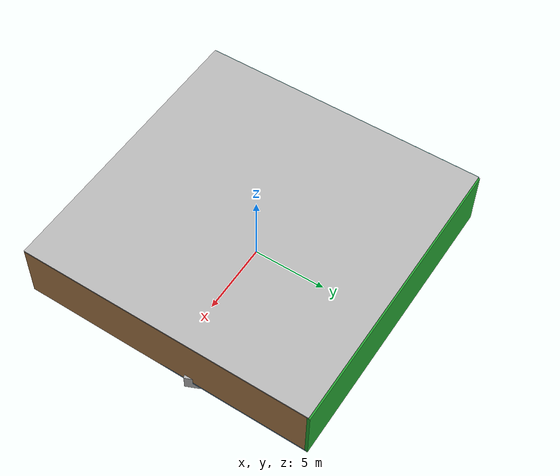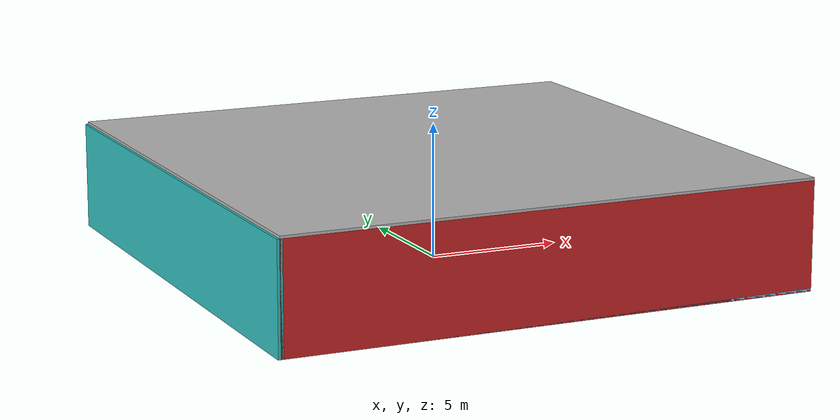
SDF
<sdf version="1.4">
 <world name="default">
  <physics type="ode">
   <max_step_size>0.001</max_step_size>
   <real_time_factor>1</real_time_factor>
   <real_time_update_rate>1000</real_time_update_rate>
   <gravity>0 0 -9.8</gravity>
  </physics>
  <scene><ambient>0.4 0.4 0.4 1</ambient><background>0.7 0.7 0.7 1</background><shadows>1</shadows></scene>
  <model name="Surrounding">
   <static>1</static>
   <link name="Ceiling">
    <collision name="Ceiling_Collision"><geometry><box><size>20 20 0.1</size></box></geometry></collision>
    <visual name="Ceiling_Visual">
     <geometry><box><size>20 20 0.1</size></box></geometry>
     <material>
      <script><uri>file://media/materials/scripts/gazebo.material</uri><name>Gazebo/Pioneer2Body</name></script>
     </material>
    </visual>
    <pose>0 0 4.05 0 0 0</pose>
   </link>
   <link name="Wall_South">
    <collision name="Wall_South_Collision">
     <geometry><box><size>20 0 4</size></box></geometry>
     <pose>0 0 2 0 -0 0</pose>
    </collision>
    <visual name="Wall_South_Visual">
     <pose>0 0 2 0 -0 0</pose>
     <geometry><box><size>20 0 4</size></box></geometry>
     <material>
      <script><uri>file://media/materials/scripts/gazebo.material</uri><name>Gazebo/RedBright</name></script>
     </material>
    </visual>
    <velocity_decay><linear>0</linear><angular>0</angular></velocity_decay>
    <pose>0 -10 0 0 -0 0</pose>
   </link>
   <link name="Wall_East">
    <collision name="Wall_21_Collision">
     <geometry><box><size>20 0 4</size></box></geometry>
     <pose>0 0 2 0 -0 0</pose>
    </collision>
    <visual name="Wall_21_Visual">
     <pose>0 0 2 0 -0 0</pose>
     <geometry><box><size>20 0 4</size></box></geometry>
     <material>
      <script><uri>file://media/materials/scripts/gazebo.material</uri><name>Gazebo/WoodFloor</name></script>
     </material>
    </visual>
    <velocity_decay><linear>0</linear><angular>0</angular></velocity_decay>
    <pose>10 0 0 0 -0 1.5708</pose>
   </link>
   <link name="Wall_North">
    <collision name="Wall_22_Collision">
     <geometry><box><size>20 0.2 4</size></box></geometry>
     <pose>0 0 2 0 -0 0</pose>
    </collision>
    <visual name="Wall_22_Visual">
     <pose>0 0 2 0 -0 0</pose>
     <geometry><box><size>20 0.2 4</size></box></geometry>
     <material>
      <script><uri>file://media/materials/scripts/gazebo.material</uri><name>Gazebo/GreenGlow</name></script>
     </material>
    </visual>
    <velocity_decay><linear>0</linear><angular>0</angular></velocity_decay>
    <pose>0 10 0 0 -0 0</pose>
   </link>
   <link name="Wall_West">
    <collision name="Wall_23_Collision">
     <geometry><box><size>20 0.2 4</size></box></geometry>
     <pose>0 0 2 0 -0 0</pose>
    </collision>
    <visual name="Wall_23_Visual">
     <pose>0 0 2 0 -0 0</pose>
     <geometry><box><size>20 0.2 4</size></box></geometry>
     <material>
      <script><uri>file://media/materials/scripts/gazebo.material</uri><name>Gazebo/Turquoise</name></script>
     </material>
    </visual>
    <velocity_decay><linear>0</linear><angular>0</angular></velocity_decay>
    <pose>-10 0 0 0 0 -1.5708</pose>
   </link>
   <link name="Ground_link">
    <collision name="collision">
     <pose>0 0 .05 0 -0 0</pose>
     <geometry><box><size>20 20 0.1</size></box></geometry>
    </collision>
    <visual name="visual">
     <pose>0 0 .05 0 -0 0</pose>
     <geometry><box><size>20 20 0.1</size></box></geometry>
     <material>
      <script><uri>file://media/materials/scripts/gazebo.material</uri><name>Gazebo/SkyBlue</name></script>
     </material>
    </visual>
   </link>
   <static>1</static>
  </model>
  <spherical_coordinates>
   <surface_model>EARTH_WGS84</surface_model>
   <latitude_deg>0</latitude_deg>
   <longitude_deg>0</longitude_deg>
   <elevation>0</elevation>
   <heading_deg>0</heading_deg>
  </spherical_coordinates>
  <light name="lightball_0" type="diffuse">
   <diffuse>0.8 0.8 0.8 1</diffuse>
   <specular>0.2 0.2 0.2 1</specular>
   <attenuation>
    <range>100</range>
    <constant>0.7</constant>
    <linear>0.01</linear>
    <quadratic>0.001</quadratic>
   </attenuation>
   <direction>-0.5 0.1 -0.9</direction>
   <pose>2.95239515324 -4.08527845774 2.39170100058 0 0 0</pose>
  </light>
  <light name="lightball_1" type="diffuse">
   <diffuse>0.8 0.8 0.8 1</diffuse>
   <specular>0.2 0.2 0.2 1</specular>
   <attenuation>
    <range>100</range>
    <constant>0.7</constant>
    <linear>0.01</linear>
    <quadratic>0.001</quadratic>
   </attenuation>
   <direction>-0.5 0.1 -0.9</direction>
   <pose>-7.45437453441 9.59839944721 1.79865269208 0 0 0</pose>
  </light>
  <light name="lightball_2" type="diffuse">
   <diffuse>0.8 0.8 0.8 1</diffuse>
   <specular>0.2 0.2 0.2 1</specular>
   <attenuation>
    <range>100</range>
    <constant>0.7</constant>
    <linear>0.01</linear>
    <quadratic>0.001</quadratic>
   </attenuation>
   <direction>-0.5 0.1 -0.9</direction>
   <pose>-9.47145267505 2.04247494356 0.929020005139 0 0 0</pose>
  </light>
  <light name="lightball_3" type="diffuse">
   <diffuse>0.8 0.8 0.8 1</diffuse>
   <specular>0.2 0.2 0.2 1</specular>
   <attenuation>
    <range>100</range>
    <constant>0.7</constant>
    <linear>0.01</linear>
    <quadratic>0.001</quadratic>
   </attenuation>
   <direction>-0.5 0.1 -0.9</direction>
   <pose>0.623478915392 -4.74650065192 3.34769788914 0 0 0</pose>
  </light>
  <light name="lightball_4" type="diffuse">
   <diffuse>0.8 0.8 0.8 1</diffuse>
   <specular>0.2 0.2 0.2 1</specular>
   <attenuation>
    <range>100</range>
    <constant>0.7</constant>
    <linear>0.01</linear>
    <quadratic>0.001</quadratic>
   </attenuation>
   <direction>-0.5 0.1 -0.9</direction>
   <pose>-9.00528123878 -9.37628954798 2.43980720544 0 0 0</pose>
  </light>
  <light name="lightball_5" type="diffuse">
   <diffuse>0.8 0.8 0.8 1</diffuse>
   <specular>0.2 0.2 0.2 1</specular>
   <attenuation>
    <range>100</range>
    <constant>0.7</constant>
    <linear>0.01</linear>
    <quadratic>0.001</quadratic>
   </attenuation>
   <direction>-0.5 0.1 -0.9</direction>
   <pose>-3.85851041454 3.11058878431 0.883660726926 0 0 0</pose>
  </light>
  <light name="lightball_6" type="diffuse">
   <diffuse>0.8 0.8 0.8 1</diffuse>
   <specular>0.2 0.2 0.2 1</specular>
   <attenuation>
    <range>100</range>
    <constant>0.7</constant>
    <linear>0.01</linear>
    <quadratic>0.001</quadratic>
   </attenuation>
   <direction>-0.5 0.1 -0.9</direction>
   <pose>-7.17368735859 6.81394176693 0.50925180294 0 0 0</pose>
  </light>
  <light name="lightball_7" type="diffuse">
   <diffuse>0.8 0.8 0.8 1</diffuse>
   <specular>0.2 0.2 0.2 1</specular>
   <attenuation>
    <range>100</range>
    <constant>0.7</constant>
    <linear>0.01</linear>
    <quadratic>0.001</quadratic>
   </attenuation>
   <direction>-0.5 0.1 -0.9</direction>
   <pose>4.55504098095 2.91659731307 2.93319713383 0 0 0</pose>
  </light>
  <light name="lightball_8" type="diffuse">
   <diffuse>0.8 0.8 0.8 1</diffuse>
   <specular>0.2 0.2 0.2 1</specular>
   <attenuation>
    <range>100</range>
    <constant>0.7</constant>
    <linear>0.01</linear>
    <quadratic>0.001</quadratic>
   </attenuation>
   <direction>-0.5 0.1 -0.9</direction>
   <pose>-2.74816898793 -9.24012294473 1.88514780816 0 0 0</pose>
  </light>
  <light name="lightball_9" type="diffuse">
   <diffuse>0.8 0.8 0.8 1</diffuse>
   <specular>0.2 0.2 0.2 1</specular>
   <attenuation>
    <range>100</range>
    <constant>0.7</constant>
    <linear>0.01</linear>
    <quadratic>0.001</quadratic>
   </attenuation>
   <direction>-0.5 0.1 -0.9</direction>
   <pose>5.18374515229 5.74196706446 0.891304691345 0 0 0</pose>
  </light>
  <include><uri>model://table</uri><pose>-8.11228129963 1.93298832175 0 0 0 0.191289905878</pose></include>
  <include><uri>model://cabinet</uri><pose>-3.8377295151 2.23112574552 0 0 0 1.59088106998</pose></include>
  <include>
   <uri>model://construction_cone</uri>
   <pose>4.20423206438 -8.14600255881 0 0 0 2.42774319683</pose>
  </include>
  <include>
   <uri>model://textured_shapes</uri>
   <pose>8.17568050921 1.29887839637 0 0 0 1.97344413753</pose>
  </include>
  <include><uri>model://table</uri><pose>7.17655375965 4.77167258792 0 0 0 0.122963083767</pose></include>
 </world>
</sdf>

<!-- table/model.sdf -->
<sdf version="1.5">
  <model name="table">
    <static>true</static>
    <link name="link">
      <collision name="surface">
        <pose>0 0 1.0 0 0 0</pose>
        <geometry>
          <box>
            <size>1.5 0.8 0.03</size>
          </box>
        </geometry>
        <surface>
          <friction>
            <ode>
              <mu>0.6</mu>
              <mu2>0.6</mu2>
            </ode>
          </friction>
        </surface>
      </collision>
      <visual name="visual1">
        <pose>0 0 1.0 0 0 0</pose>
        <geometry>
          <box>
            <size>1.5 0.8 0.03</size>
          </box>
        </geometry>
        <material>
          <script>
            <uri>model://media/materials/scripts/gazebo.material</uri>
            <name>Gazebo/Wood</name>
          </script>
        </material>
      </visual>
      <collision name="front_left_leg">
        <pose>0.68 0.38 0.5 0 0 0</pose>
        <geometry>
          <cylinder>
            <radius>0.02</radius>
            <length>1.0</length>
          </cylinder>
        </geometry>
      </collision>
      <visual name="front_left_leg">
        <pose>0.68 0.38 0.5 0 0 0</pose>
        <geometry>
          <cylinder>
            <radius>0.02</radius>
            <length>1.0</length>
          </cylinder>
        </geometry>
        <material>
          <script>
            <uri>model://media/materials/scripts/gazebo.material</uri>
            <name>Gazebo/Grey</name>
          </script>
        </material>
      </visual>
      <collision name="front_right_leg">
        <pose>0.68 -0.38 0.5 0 0 0</pose>
        <geometry>
          <cylinder>
            <radius>0.02</radius>
            <length>1.0</length>
          </cylinder>
        </geometry>
      </collision>
      <visual name="front_right_leg">
        <pose>0.68 -0.38 0.5 0 0 0</pose>
        <geometry>
          <cylinder>
            <radius>0.02</radius>
            <length>1.0</length>
          </cylinder>
        </geometry>
        <material>
          <script>
            <uri>model://media/materials/scripts/gazebo.material</uri>
            <name>Gazebo/Grey</name>
          </script>
        </material>
      </visual>
      <collision name="back_right_leg">
        <pose>-0.68 -0.38 0.5 0 0 0</pose>
        <geometry>
          <cylinder>
            <radius>0.02</radius>
            <length>1.0</length>
          </cylinder>
        </geometry>
      </collision>
      <visual name="back_right_leg">
        <pose>-0.68 -0.38 0.5 0 0 0</pose>
        <geometry>
          <cylinder>
            <radius>0.02</radius>
            <length>1.0</length>
          </cylinder>
        </geometry>
        <material>
          <script>
            <uri>model://media/materials/scripts/gazebo.material</uri>
            <name>Gazebo/Grey</name>
          </script>
        </material>
      </visual>
      <collision name="back_left_leg">
        <pose>-0.68 0.38 0.5 0 0 0</pose>
        <geometry>
          <cylinder>
            <radius>0.02</radius>
            <length>1.0</length>
          </cylinder>
        </geometry>
      </collision>
      <visual name="back_left_leg">
        <pose>-0.68 0.38 0.5 0 0 0</pose>
        <geometry>
          <cylinder>
            <radius>0.02</radius>
            <length>1.0</length>
          </cylinder>
        </geometry>
        <material>
          <script>
            <uri>model://media/materials/scripts/gazebo.material</uri>
            <name>Gazebo/Grey</name>
          </script>
        </material>
      </visual>
    </link>
  </model>
</sdf>

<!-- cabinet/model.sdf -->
<sdf version="1.5">
  <model name="cabinet">
    <static>true</static>
    <link name="cabinet_bottom_plate">
      <inertial>
        <pose>0 0 -1 0 0 0</pose>
        <inertia>
          <ixx>2.050000</ixx>
          <ixy>0</ixy>
          <ixz>0</ixz>
          <iyy>2.050000</iyy>
          <iyz>0</iyz>
          <izz>2.050000</izz>
        </inertia>
        <mass>25.000000</mass>
      </inertial>
      <collision name="cabinet_bottom_plate_geom">
        <pose>0 0 0.010000 0 0 0</pose>
        <geometry>
          <box>
            <size>0.450000 0.450000 0.020000</size>
          </box>
        </geometry>
      </collision>
      <visual name="cabinet_bottom_plate_geom_visual">
        <pose>0 0 0.010000 0 0 0</pose>
        <geometry>
          <box>
            <size>0.450000 0.450000 0.020000</size>
          </box>
        </geometry>
        <material>
          <script>
            <uri>model://media/materials/scripts/gazebo.material</uri>
            <name>Gazebo/Wood</name>
          </script>
        </material>
      </visual>
      <collision name="cabinet_bottom_plate_geom_cabinet_back_plate">
        <pose>0.235000 0 0.510000 0 0 0</pose>
        <geometry>
          <box>
            <size>0.020000 0.450000 1.020000</size>
          </box>
        </geometry>
      </collision>
      <visual name="cabinet_bottom_plate_geom_cabinet_back_plate_visual">
        <pose>0.235000 0 0.510000 0 0 0</pose>
        <geometry>
          <box>
            <size>0.020000 0.450000 1.020000</size>
          </box>
        </geometry>
        <material>
          <script>
            <uri>model://media/materials/scripts/gazebo.material</uri>
            <name>Gazebo/Wood</name>
          </script>
        </material>
      </visual>
      <collision name="cabinet_bottom_plate_geom_cabinet_left_plate">
        <pose>0 0.235000 0.510000 0 0 0</pose>
        <geometry>
          <box>
            <size>0.450000 0.020000 1.020000</size>
          </box>
        </geometry>
      </collision>
      <visual name="cabinet_bottom_plate_geom_cabinet_left_plate_visual">
        <pose>0 0.235000 0.510000 0 0 0</pose>
        <geometry>
          <box>
            <size>0.450000 0.020000 1.020000</size>
          </box>
        </geometry>
        <material>
          <script>
            <uri>model://media/materials/scripts/gazebo.material</uri>
            <name>Gazebo/Wood</name>
          </script>
        </material>
      </visual>
      <collision name="cabinet_bottom_plate_geom_cabinet_middle_plate">
        <pose>0 0 0.510000 0 0 0</pose>
        <geometry>
          <box>
            <size>0.450000 0.450000 0.020000</size>
          </box>
        </geometry>
      </collision>
      <visual name="cabinet_bottom_plate_geom_cabinet_middle_plate_visual">
        <pose>0 0 0.510000 0 0 0</pose>
        <geometry>
          <box>
            <size>0.450000 0.450000 0.020000</size>
          </box>
        </geometry>
        <material>
          <script>
            <uri>model://media/materials/scripts/gazebo.material</uri>
            <name>Gazebo/Wood</name>
          </script>
        </material>
      </visual>
      <collision name="cabinet_bottom_plate_geom_cabinet_right_plate">
        <pose>0 -0.235000 0.510000 0 0 0</pose>
        <geometry>
          <box>
            <size>0.450000 0.020000 1.020000</size>
          </box>
        </geometry>
      </collision>
      <visual name="cabinet_bottom_plate_geom_cabinet_right_plate_visual">
        <pose>0 -0.235000 0.510000 0 0 0</pose>
        <geometry>
          <box>
            <size>0.450000 0.020000 1.020000</size>
          </box>
        </geometry>
        <material>
          <script>
            <uri>model://media/materials/scripts/gazebo.material</uri>
            <name>Gazebo/Wood</name>
          </script>
        </material>
      </visual>
      <collision name="cabinet_bottom_plate_geom_cabinet_top_plate">
        <pose>0 0 1.010000 0 0 0</pose>
        <geometry>
          <box>
            <size>0.450000 0.450000 0.020000</size>
          </box>
        </geometry>
      </collision>
      <visual name="cabinet_bottom_plate_geom_cabinet_top_plate_visual">
        <pose>0 0 1.010000 0 0 0</pose>
        <geometry>
          <box>
            <size>0.450000 0.450000 0.020000</size>
          </box>
        </geometry>
        <material>
          <script>
            <uri>model://media/materials/scripts/gazebo.material</uri>
            <name>Gazebo/Wood</name>
          </script>
        </material>
      </visual>
    </link>
  </model>
</sdf>

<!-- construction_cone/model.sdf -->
<sdf version="1.5">
  <model name="Construction Cone">
    <link name="link">
      <collision name="collision">
        <geometry>
          <mesh>
            <scale>10 10 10</scale>
            <uri>file://isr-testbed/construction_cone/meshes/construction_cone.dae</uri>
          </mesh>
        </geometry>
      </collision>
      <visual name="visual">
        <geometry>
          <mesh>
            <scale>10 10 10</scale>
            <uri>file://isr-testbed/construction_cone/meshes/construction_cone.dae</uri>
          </mesh>
        </geometry>
      </visual>
    </link>
  </model>
</sdf>

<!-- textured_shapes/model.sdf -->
<sdf version="1.6">
  <model name="textured_shapes">
    <pose>0 0 0.5 0 0 0</pose>
    <link name="box">
      <pose>0 -1.5 0 0 0 0</pose>
      <collision name="collision">
        <geometry>
          <box>
            <size>1 1 1</size>
          </box>
        </geometry>
      </collision>
      <visual name="visual">
        <geometry>
          <box>
            <size>1 1 1</size>
          </box>
        </geometry>
        <material>
          <script>
            <uri>model://../model_source/models/textured_shapes/materials/scripts</uri>
            <uri>model://../model_source/models/textured_shapes/materials/textures</uri>
            <name>TexturedShape/Squares</name>
          </script>
        </material>
      </visual>
    </link>
    <link name="sphere">
      <collision name="collision">
        <geometry>
          <sphere>
            <radius>0.5</radius>
          </sphere>
        </geometry>
      </collision>
      <visual name="visual">
        <geometry>
          <sphere>
            <radius>0.5</radius>
          </sphere>
        </geometry>
        <material>
          <script>
            <uri>model://../model_source/models/textured_shapes/materials/scripts</uri>
            <uri>model://../model_source/models/textured_shapes/materials/textures</uri>
            <name>TexturedShape/Squares</name>
          </script>
        </material>
      </visual>
    </link>
    <link name="cylinder">
      <pose>0 1.5 0 0 0 0</pose>
      <collision name="collision">
        <geometry>
          <cylinder>
            <radius>0.5</radius>
            <length>1</length>
          </cylinder>
        </geometry>
      </collision>
      <visual name="visual">
        <geometry>
          <cylinder>
            <radius>0.5</radius>
            <length>1</length>
          </cylinder>
        </geometry>
        <material>
          <script>
            <uri>model://../model_source/models/textured_shapes/materials/scripts</uri>
            <uri>model://../model_source/models/textured_shapes/materials/textures</uri>
            <name>TexturedShape/Squares</name>
          </script>
        </material>
      </visual>
    </link>
  </model>
</sdf>
